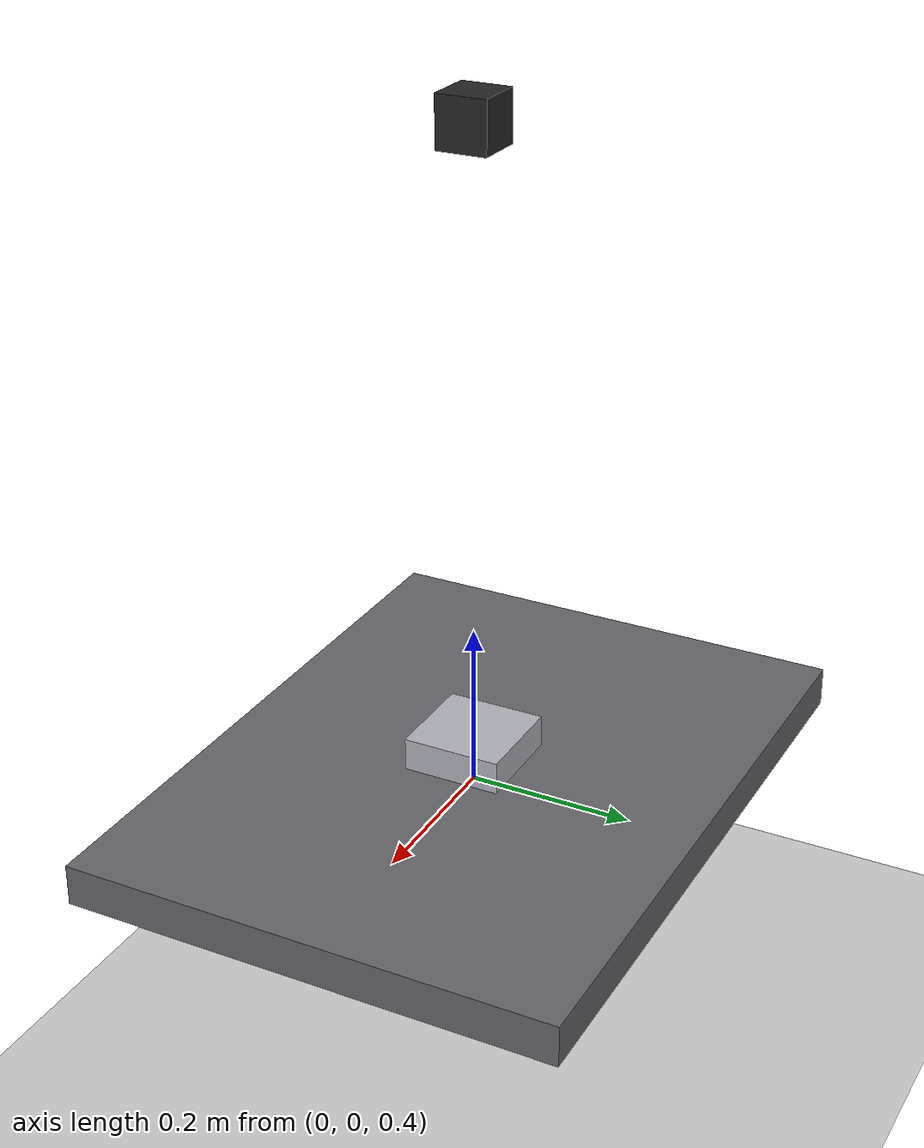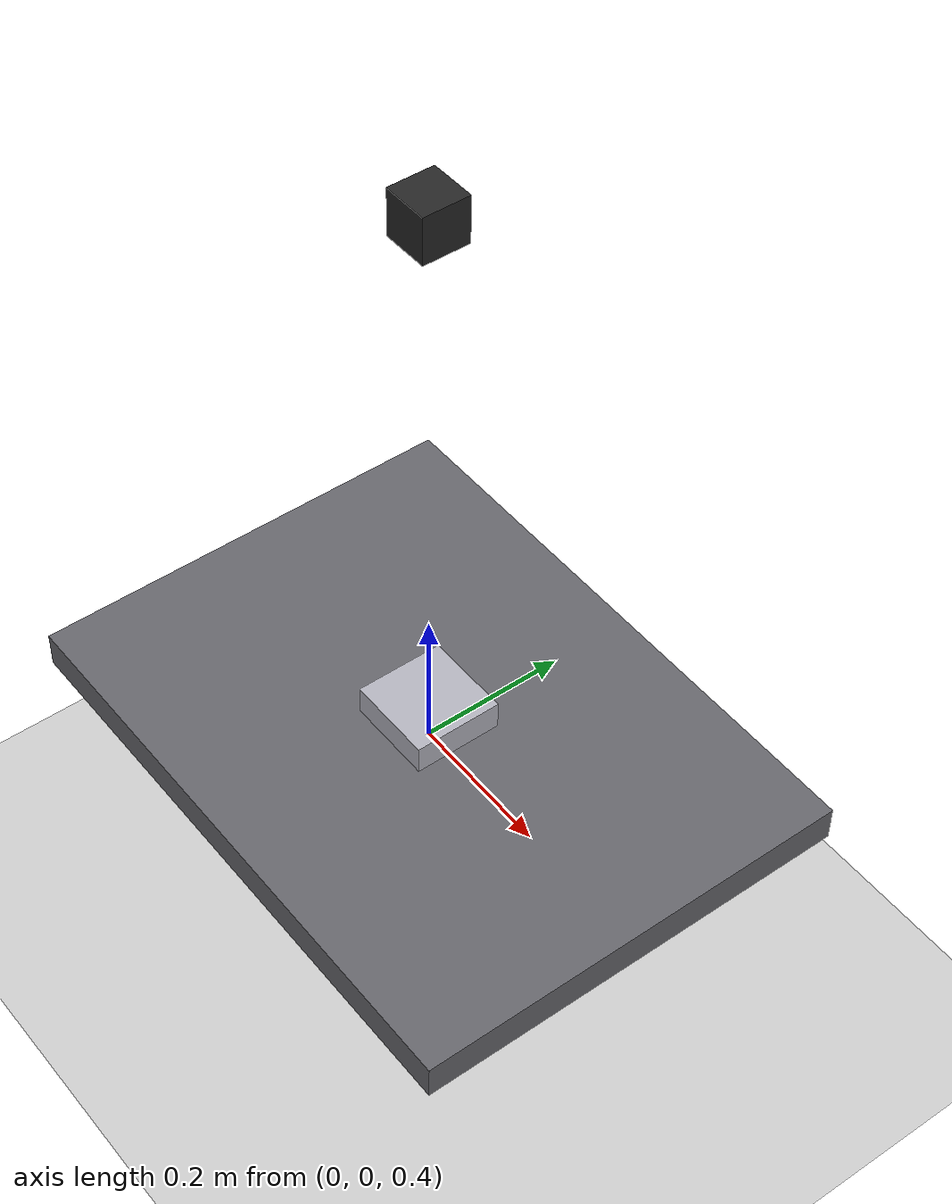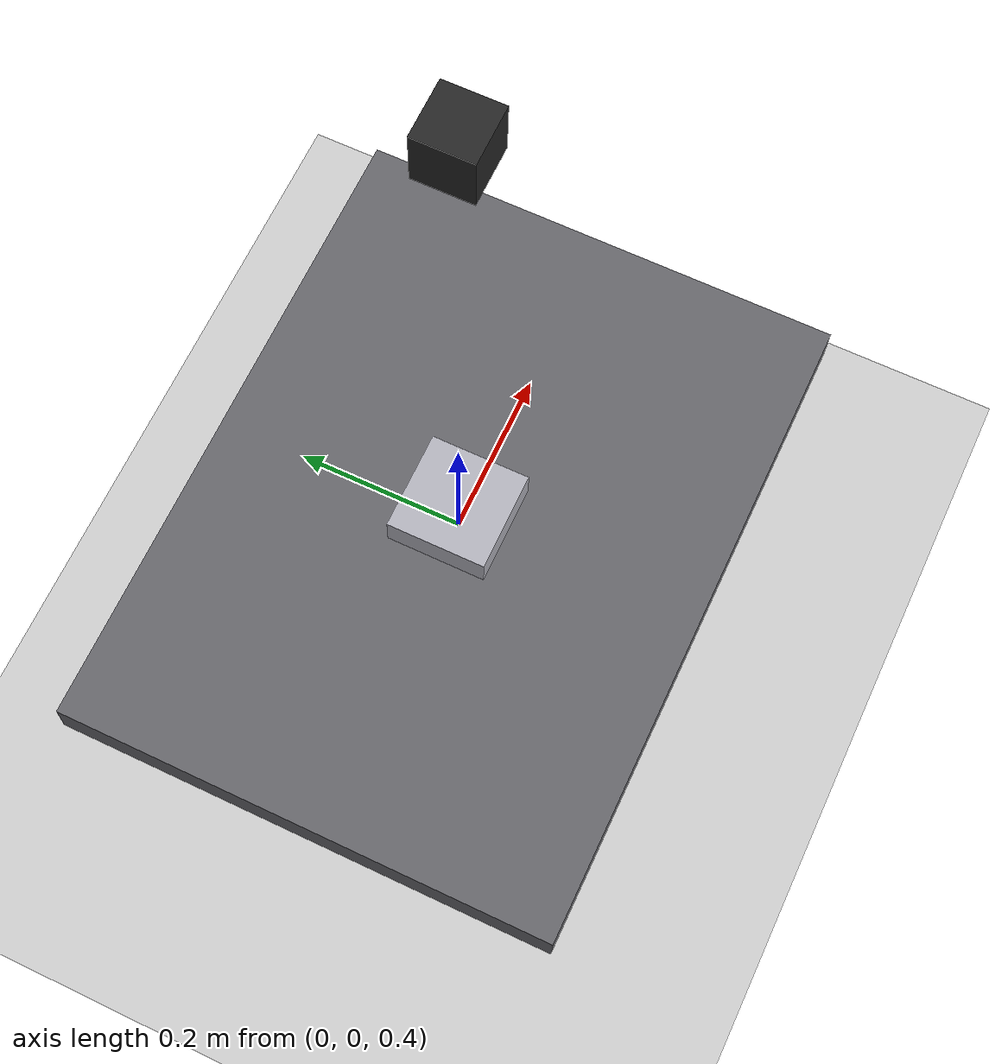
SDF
<?xml version="1.0" ?>
<sdf version="1.6">
  <world name="inspection_cell">

    <include><uri>model://sun</uri></include>
    <include><uri>model://ground_plane</uri></include>

    <!-- Inspection table -->
    <model name="table">
      <static>true</static>
      <pose>0 0 0.40 0 0 0</pose>
      <link name="top">
        <collision name="c">
          <geometry><box><size>0.8 0.6 0.05</size></box></geometry>
        </collision>
        <visual name="v">
          <geometry><box><size>0.8 0.6 0.05</size></box></geometry>
          <material><ambient>0.3 0.3 0.32 1</ambient><diffuse>0.4 0.4 0.42 1</diffuse></material>
        </visual>
      </link>
    </model>

    <!-- Recovered part being inspected -->
    <model name="part">
      <static>true</static>
      <pose>0 0 0.45 0 0 0</pose>
      <link name="link">
        <collision name="c">
          <geometry><box><size>0.12 0.12 0.04</size></box></geometry>
        </collision>
        <visual name="v">
          <geometry><box><size>0.12 0.12 0.04</size></box></geometry>
          <material><ambient>0.55 0.55 0.58 1</ambient><diffuse>0.7 0.7 0.74 1</diffuse></material>
        </visual>
      </link>
    </model>

    <!-- Fixed inspection camera, 1.2 m above the table, pitched to look down -->
    <model name="inspection_camera">
      <static>true</static>
      <pose>0 0 1.20 0 1.5708 0</pose>
      <link name="link">
        <visual name="body">
          <geometry><box><size>0.06 0.06 0.06</size></box></geometry>
          <material><ambient>0.1 0.1 0.1 1</ambient><diffuse>0.15 0.15 0.15 1</diffuse></material>
        </visual>
        <sensor name="cam" type="camera">
          <always_on>1</always_on>
          <update_rate>10</update_rate>
          <visualize>true</visualize>
          <camera>
            <horizontal_fov>1.0</horizontal_fov>
            <image><width>640</width><height>480</height><format>R8G8B8</format></image>
            <clip><near>0.05</near><far>10</far></clip>
          </camera>
          <plugin name="gz_camera_plugin" filename="libgazebo_ros_camera.so">
            <ros>
              <namespace>/inspection</namespace>
              <remapping>~/image_raw:=gz_camera/image_raw</remapping>
              <remapping>~/camera_info:=gz_camera/camera_info</remapping>
            </ros>
            <camera_name>gz_camera</camera_name>
            <frame_name>camera_optical_frame</frame_name>
          </plugin>
        </sensor>
      </link>
    </model>

  </world>
</sdf>
